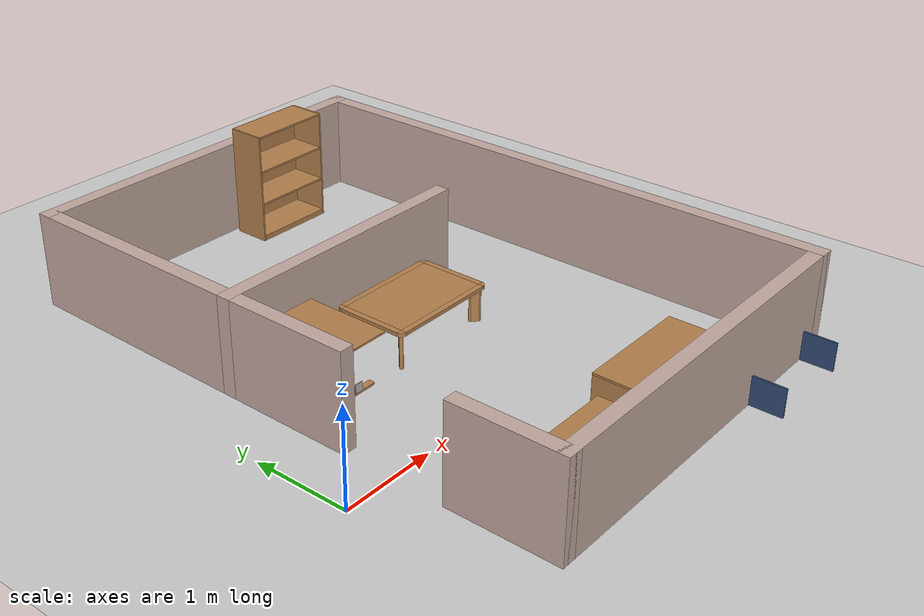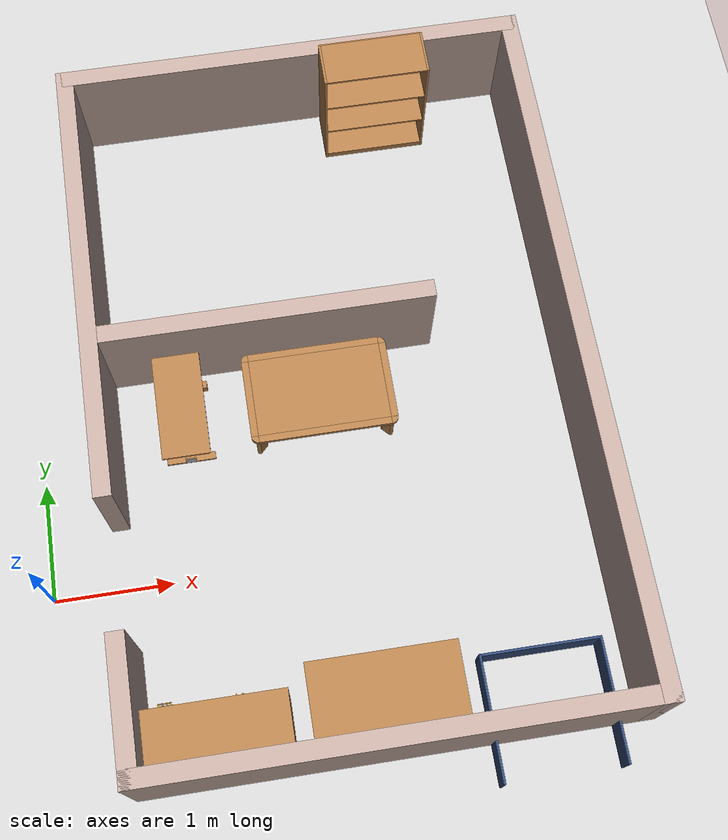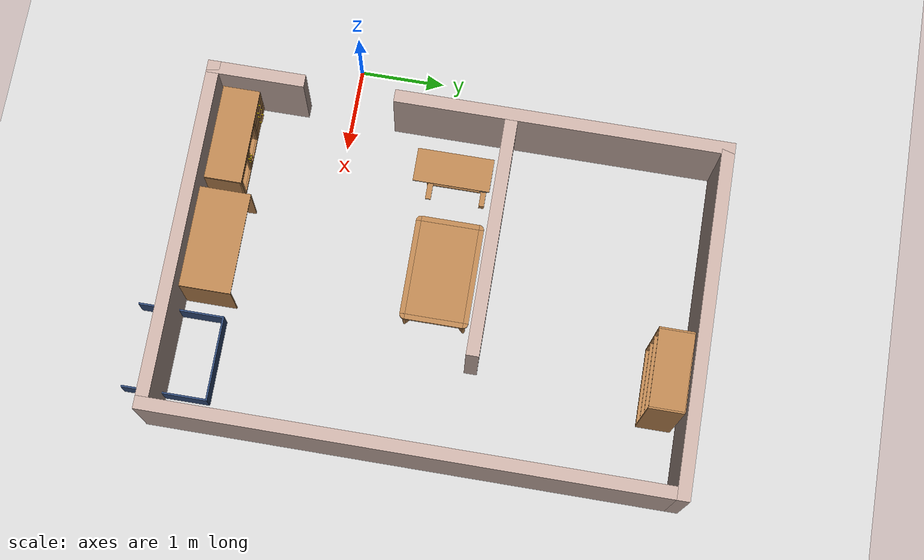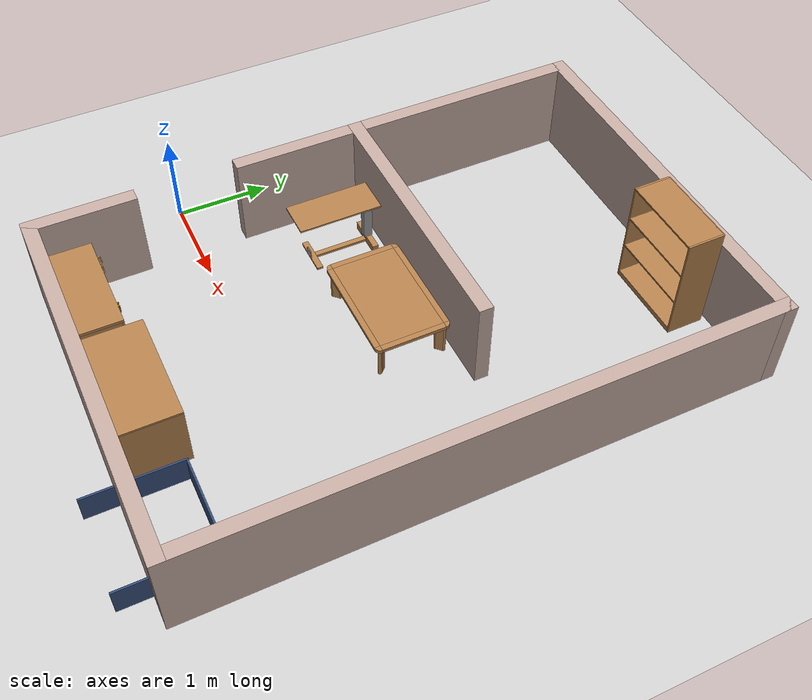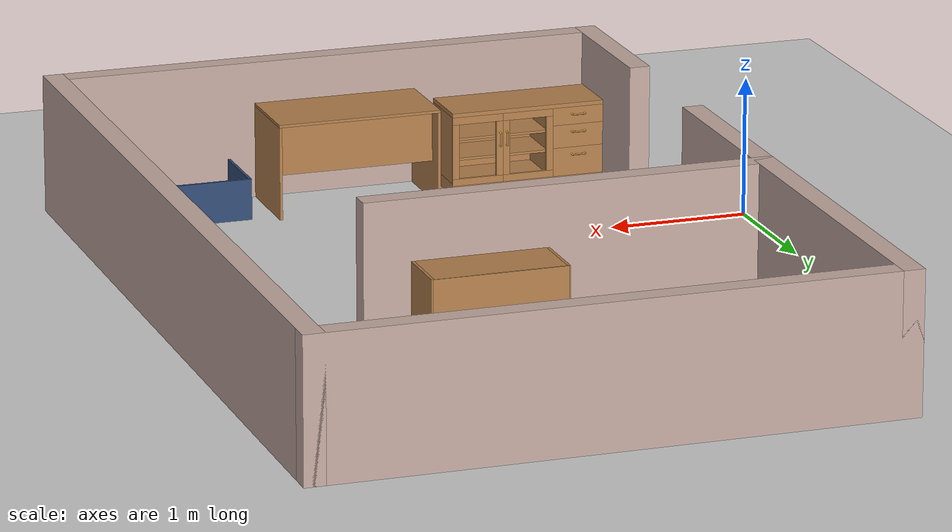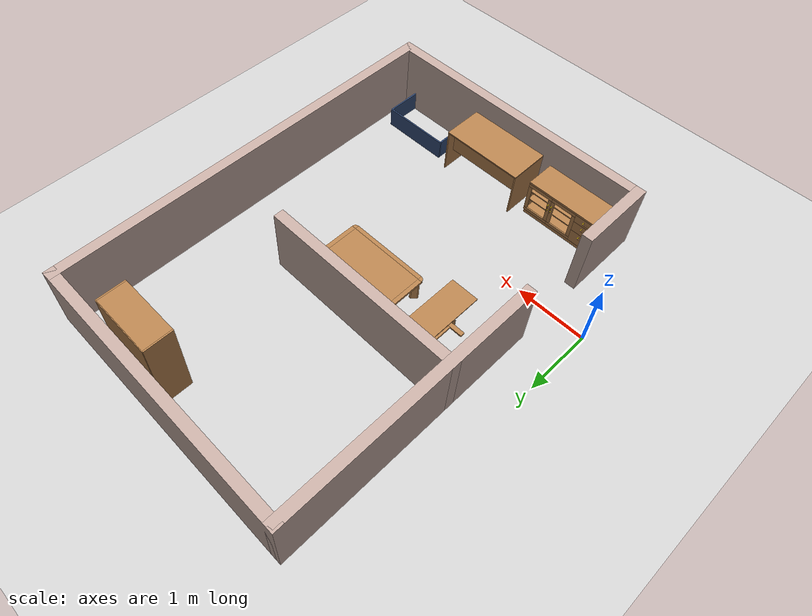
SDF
<sdf version="1.6">
 <world name="default">
  <light name="sun" type="directional">
   <pose>0 0 10 0 -0 0</pose>
   <diffuse>0.8 0.8 0.8 1</diffuse>
   <specular>0.2 0.2 0.2 1</specular>
   <attenuation>
    <range>1000</range>
    <constant>0.9</constant>
    <linear>0.01</linear>
    <quadratic>0.001</quadratic>
   </attenuation>
   <direction>-0.5 0.1 -0.9</direction>
  </light>
  <model name="ground_plane">
   <static>1</static>
   <link name="link">
    <collision name="collision">
     <geometry><plane><normal>0 0 1</normal><size>100 100</size></plane></geometry>
     <surface><friction><ode><mu>100</mu><mu2>50</mu2></ode></friction></surface>
    </collision>
    <visual name="visual">
     <cast_shadows>0</cast_shadows>
     <geometry><plane><normal>0 0 1</normal><size>100 100</size></plane></geometry>
     <material>
      <script><uri>file://media/materials/scripts/gazebo.material</uri><name>Gazebo/Grey</name></script>
     </material>
    </visual>
   </link>
  </model>
  <gravity>0 0 -9.8</gravity>
  <magnetic_field>6e-06 2.3e-05 -4.2e-05</magnetic_field>
  <atmosphere type="adiabatic"/>
  <physics name="default_physics" default="0" type="ode">
   <max_step_size>0.001</max_step_size>
   <real_time_factor>1</real_time_factor>
   <real_time_update_rate>1000</real_time_update_rate>
  </physics>
  <scene><ambient>0.4 0.4 0.4 1</ambient><background>0.7 0.7 0.7 1</background><shadows>1</shadows></scene>
  <spherical_coordinates>
   <surface_model>EARTH_WGS84</surface_model>
   <latitude_deg>0</latitude_deg>
   <longitude_deg>0</longitude_deg>
   <elevation>0</elevation>
   <heading_deg>0</heading_deg>
  </spherical_coordinates>
  <model name="robocup_example_walls">
   <pose>2.60042 1.39489 0 0 -0 0</pose>
   <link name="Wall_23">
    <collision name="Wall_23_Collision">
     <geometry><box><size>3.95 0.15 1</size></box></geometry>
     <pose>0 0 0.5 0 -0 0</pose>
    </collision>
    <visual name="Wall_23_Visual">
     <pose>0 0 0.5 0 -0 0</pose>
     <geometry><box><size>3.95 0.15 1</size></box></geometry>
     <material>
      <script><uri>file://media/materials/scripts/gazebo.material</uri><name>Gazebo/Grey</name></script>
      <ambient>0.760784 0.662745 0.627451 1</ambient>
     </material>
     <meta><layer>0</layer></meta>
    </visual>
    <pose>-2 1.1 0 0 -0 1.5708</pose>
   </link>
   <link name="Wall_24">
    <collision name="Wall_24_Collision">
     <geometry><box><size>4.15 0.15 1</size></box></geometry>
     <pose>0 0 0.5 0 -0 0</pose>
    </collision>
    <visual name="Wall_24_Visual">
     <pose>0 0 0.5 0 -0 0</pose>
     <geometry><box><size>4.15 0.15 1</size></box></geometry>
     <material>
      <script><uri>file://media/materials/scripts/gazebo.material</uri><name>Gazebo/Grey</name></script>
      <ambient>0.760784 0.662745 0.627451 1</ambient>
     </material>
     <meta><layer>0</layer></meta>
    </visual>
    <pose>-0 3 0 0 -0 0</pose>
   </link>
   <link name="Wall_26">
    <collision name="Wall_26_Collision">
     <geometry><box><size>1.15 0.15 1</size></box></geometry>
     <pose>0 0 0.5 0 -0 0</pose>
    </collision>
    <visual name="Wall_26_Visual">
     <pose>0 0 0.5 0 -0 0</pose>
     <geometry><box><size>1.15 0.15 1</size></box></geometry>
     <material>
      <script><uri>file://media/materials/scripts/gazebo.material</uri><name>Gazebo/Grey</name></script>
      <ambient>0.760784 0.662745 0.627451 1</ambient>
     </material>
     <meta><layer>0</layer></meta>
    </visual>
    <pose>-2 -2.5 0 0 -0 -1.5708</pose>
   </link>
   <link name="Wall_27">
    <collision name="Wall_27_Collision">
     <geometry><box><size>4.15 0.15 1</size></box></geometry>
     <pose>0 0 0.5 0 -0 0</pose>
    </collision>
    <visual name="Wall_27_Visual">
     <pose>0 0 0.5 0 -0 0</pose>
     <geometry><box><size>4.15 0.15 1</size></box></geometry>
     <material>
      <script><uri>file://media/materials/scripts/gazebo.material</uri><name>Gazebo/Grey</name></script>
      <ambient>0.760784 0.662745 0.627451 1</ambient>
     </material>
     <meta><layer>0</layer></meta>
    </visual>
    <pose>-0 -3 0 0 -0 0</pose>
   </link>
   <link name="Wall_28">
    <collision name="Wall_28_Collision">
     <geometry><box><size>6.15 0.15 1</size></box></geometry>
     <pose>0 0 0.5 0 -0 0</pose>
    </collision>
    <visual name="Wall_28_Visual">
     <pose>0 0 0.5 0 -0 0</pose>
     <geometry><box><size>6.15 0.15 1</size></box></geometry>
     <material>
      <script><uri>file://media/materials/scripts/gazebo.material</uri><name>Gazebo/Grey</name></script>
      <ambient>0.760784 0.662745 0.627451 1</ambient>
     </material>
     <meta><layer>0</layer></meta>
    </visual>
    <pose>2 0 0 0 -0 1.5708</pose>
   </link>
   <link name="Wall_32">
    <collision name="Wall_32_Collision">
     <geometry><box><size>2.95 0.15 1</size></box></geometry>
     <pose>0 0 0.5 0 -0 0</pose>
    </collision>
    <visual name="Wall_32_Visual">
     <pose>0 0 0.5 0 -0 0</pose>
     <geometry><box><size>2.95 0.15 1</size></box></geometry>
     <material>
      <script><uri>file://media/materials/scripts/gazebo.material</uri><name>Gazebo/Grey</name></script>
      <ambient>0.760784 0.662745 0.627451 1</ambient>
     </material>
     <meta><layer>0</layer></meta>
    </visual>
    <pose>-0.6 0.5 0 0 -0 0</pose>
   </link>
   <static>1</static>
  </model>
  <model name="kitchen_lowtable">
   <link name="link">
    <inertial>
     <mass>10</mass>
     <inertia><ixx>1</ixx><ixy>0</ixy><ixz>0</ixz><iyy>1</iyy><iyz>0</iyz><izz>1</izz></inertia>
    </inertial>
    <visual name="center_board">
     <pose>0 0 0.38 0 -0 0</pose>
     <geometry><box><size>0.68 1.13 0.04</size></box></geometry>
     <material>
      <script><uri>model://base_materials/wood/scripts/wood.material</uri><name>base_materials/wood</name></script>
     </material>
    </visual>
    <collision name="collision_center_board">
     <pose>0 0 0.38 0 -0 0</pose>
     <geometry><box><size>0.68 1.13 0.04</size></box></geometry>
    </collision>
    <visual name="front_board">
     <pose>0.37 0 0.38 0 -0 0</pose>
     <geometry><box><size>0.06 1.13 0.04</size></box></geometry>
     <material>
      <script><uri>model://base_materials/wood/scripts/wood.material</uri><name>base_materials/wood</name></script>
     </material>
    </visual>
    <collision name="collision_front_board">
     <pose>0.37 0 0.38 0 -0 0</pose>
     <geometry><box><size>0.06 1.13 0.04</size></box></geometry>
    </collision>
    <visual name="back_board">
     <pose>-0.37 0 0.38 0 -0 0</pose>
     <geometry><box><size>0.06 1.13 0.04</size></box></geometry>
     <material>
      <script><uri>model://base_materials/wood/scripts/wood.material</uri><name>base_materials/wood</name></script>
     </material>
    </visual>
    <collision name="collision_back_board">
     <pose>-0.37 0 0.38 0 -0 0</pose>
     <geometry><box><size>0.06 1.13 0.04</size></box></geometry>
    </collision>
    <visual name="right_board">
     <pose>0 0.595 0.38 0 -0 0</pose>
     <geometry><box><size>0.68 0.06 0.04</size></box></geometry>
     <material>
      <script><uri>model://base_materials/wood/scripts/wood.material</uri><name>base_materials/wood</name></script>
     </material>
    </visual>
    <collision name="collision_right_board">
     <pose>0 0.595 0.38 0 -0 0</pose>
     <geometry><box><size>0.68 0.06 0.04</size></box></geometry>
    </collision>
    <visual name="left_board">
     <pose>0 -0.595 0.38 0 -0 0</pose>
     <geometry><box><size>0.68 0.06 0.04</size></box></geometry>
     <material>
      <script><uri>model://base_materials/wood/scripts/wood.material</uri><name>base_materials/wood</name></script>
     </material>
    </visual>
    <collision name="collision_left_board">
     <pose>0 -0.595 0.38 0 -0 0</pose>
     <geometry><box><size>0.68 0.06 0.04</size></box></geometry>
    </collision>
    <visual name="front_right_corner_board">
     <pose>0.34 0.565 0.38 0 -0 0</pose>
     <geometry><cylinder><radius>0.06</radius><length>0.039</length></cylinder></geometry>
     <material>
      <script><uri>model://base_materials/wood/scripts/wood.material</uri><name>base_materials/wood</name></script>
     </material>
    </visual>
    <collision name="collision_front_right_corner_board">
     <pose>0.34 0.565 0.38 0 -0 0</pose>
     <geometry><cylinder><radius>0.06</radius><length>0.039</length></cylinder></geometry>
    </collision>
    <visual name="front_left_corner_board">
     <pose>0.34 -0.565 0.38 0 -0 0</pose>
     <geometry><cylinder><radius>0.06</radius><length>0.039</length></cylinder></geometry>
     <material>
      <script><uri>model://base_materials/wood/scripts/wood.material</uri><name>base_materials/wood</name></script>
     </material>
    </visual>
    <collision name="collision_front_left_corner_board">
     <pose>0.34 -0.565 0.38 0 -0 0</pose>
     <geometry><cylinder><radius>0.06</radius><length>0.039</length></cylinder></geometry>
    </collision>
    <visual name="front_back_right_corner_board">
     <pose>-0.34 0.565 0.38 0 -0 0</pose>
     <geometry><cylinder><radius>0.06</radius><length>0.039</length></cylinder></geometry>
     <material>
      <script><uri>model://base_materials/wood/scripts/wood.material</uri><name>base_materials/wood</name></script>
     </material>
    </visual>
    <collision name="collision_back_right_corner_board">
     <pose>-0.34 0.565 0.38 0 -0 0</pose>
     <geometry><cylinder><radius>0.06</radius><length>0.039</length></cylinder></geometry>
    </collision>
    <visual name="front_back_left_corner_board">
     <pose>-0.34 -0.565 0.38 0 -0 0</pose>
     <geometry><cylinder><radius>0.06</radius><length>0.039</length></cylinder></geometry>
     <material>
      <script><uri>model://base_materials/wood/scripts/wood.material</uri><name>base_materials/wood</name></script>
     </material>
    </visual>
    <collision name="collision_back_left_corner_board">
     <pose>-0.34 -0.565 0.38 0 -0 0</pose>
     <geometry><cylinder><radius>0.06</radius><length>0.039</length></cylinder></geometry>
    </collision>
    <visual name="front_left_corner_frame1">
     <pose>0.345858 -0.57086 0.18 0 -0 0</pose>
     <geometry><cylinder><radius>0.02</radius><length>0.36</length></cylinder></geometry>
     <material>
      <script><uri>model://base_materials/wood/scripts/wood.material</uri><name>base_materials/wood</name></script>
     </material>
    </visual>
    <collision name="collision_front_left_corner_frame1">
     <pose>0.345858 -0.57086 0.18 0 -0 0</pose>
     <geometry><cylinder><radius>0.02</radius><length>0.36</length></cylinder></geometry>
    </collision>
    <visual name="front_left_corner_frame2">
     <pose>0.317574 -0.54257 0.18 0 -0 0.7854</pose>
     <geometry><box><size>0.04 0.08 0.36</size></box></geometry>
     <material>
      <script><uri>model://base_materials/wood/scripts/wood.material</uri><name>base_materials/wood</name></script>
     </material>
    </visual>
    <collision name="collision_front_left_corner_frame2">
     <pose>0.317574 -0.54257 0.18 0 -0 0.7854</pose>
     <geometry><box><size>0.04 0.08 0.36</size></box></geometry>
    </collision>
    <visual name="front_left_corner_frame3">
     <pose>0.289289 -0.51429 0.18 0 -0 0</pose>
     <geometry><cylinder><radius>0.02</radius><length>0.36</length></cylinder></geometry>
     <material>
      <script><uri>model://base_materials/wood/scripts/wood.material</uri><name>base_materials/wood</name></script>
     </material>
    </visual>
    <collision name="collision_front_left_corner_frame3">
     <pose>0.289289 -0.51429 0.18 0 -0 0</pose>
     <geometry><cylinder><radius>0.02</radius><length>0.36</length></cylinder></geometry>
    </collision>
    <visual name="front_right_corner_frame1">
     <pose>0.345858 0.57086 0.18 0 -0 0</pose>
     <geometry><cylinder><radius>0.02</radius><length>0.36</length></cylinder></geometry>
     <material>
      <script><uri>model://base_materials/wood/scripts/wood.material</uri><name>base_materials/wood</name></script>
     </material>
    </visual>
    <collision name="collision_front_right_corner_frame1">
     <pose>0.345858 0.57086 0.18 0 -0 0</pose>
     <geometry><cylinder><radius>0.02</radius><length>0.36</length></cylinder></geometry>
    </collision>
    <visual name="front_right_corner_frame2">
     <pose>0.317574 0.54257 0.18 0 0 -0.7854</pose>
     <geometry><box><size>0.04 0.08 0.36</size></box></geometry>
     <material>
      <script><uri>model://base_materials/wood/scripts/wood.material</uri><name>base_materials/wood</name></script>
     </material>
    </visual>
    <collision name="collision_front_right_corner_frame2">
     <pose>0.317574 0.54257 0.18 0 0 -0.7854</pose>
     <geometry><box><size>0.04 0.08 0.36</size></box></geometry>
    </collision>
    <visual name="front_right_corner_frame3">
     <pose>0.289289 0.51429 0.18 0 -0 0</pose>
     <geometry><cylinder><radius>0.02</radius><length>0.36</length></cylinder></geometry>
     <material>
      <script><uri>model://base_materials/wood/scripts/wood.material</uri><name>base_materials/wood</name></script>
     </material>
    </visual>
    <collision name="collision_front_right_corner_frame3">
     <pose>0.289289 0.51429 0.18 0 -0 0</pose>
     <geometry><cylinder><radius>0.02</radius><length>0.36</length></cylinder></geometry>
    </collision>
    <visual name="back_left_corner_frame1">
     <pose>-0.345858 -0.57086 0.18 0 -0 0</pose>
     <geometry><cylinder><radius>0.02</radius><length>0.36</length></cylinder></geometry>
     <material>
      <script><uri>model://base_materials/wood/scripts/wood.material</uri><name>base_materials/wood</name></script>
     </material>
    </visual>
    <collision name="collision_back_left_corner_frame1">
     <pose>-0.345858 -0.57086 0.18 0 -0 0</pose>
     <geometry><cylinder><radius>0.02</radius><length>0.36</length></cylinder></geometry>
    </collision>
    <visual name="back_left_corner_frame2">
     <pose>-0.317574 -0.54257 0.18 0 0 -0.7854</pose>
     <geometry><box><size>0.04 0.08 0.36</size></box></geometry>
     <material>
      <script><uri>model://base_materials/wood/scripts/wood.material</uri><name>base_materials/wood</name></script>
     </material>
    </visual>
    <collision name="collision_back_left_corner_frame2">
     <pose>-0.317574 -0.54257 0.18 0 0 -0.7854</pose>
     <geometry><box><size>0.04 0.08 0.36</size></box></geometry>
    </collision>
    <visual name="back_left_corner_frame3">
     <pose>-0.289289 -0.51429 0.18 0 -0 0</pose>
     <geometry><cylinder><radius>0.02</radius><length>0.36</length></cylinder></geometry>
     <material>
      <script><uri>model://base_materials/wood/scripts/wood.material</uri><name>base_materials/wood</name></script>
     </material>
    </visual>
    <collision name="collision_back_left_corner_frame3">
     <pose>-0.289289 -0.51429 0.18 0 -0 0</pose>
     <geometry><cylinder><radius>0.02</radius><length>0.36</length></cylinder></geometry>
    </collision>
    <visual name="back_right_corner_frame1">
     <pose>-0.345858 0.57086 0.18 0 -0 0</pose>
     <geometry><cylinder><radius>0.02</radius><length>0.36</length></cylinder></geometry>
     <material>
      <script><uri>model://base_materials/wood/scripts/wood.material</uri><name>base_materials/wood</name></script>
     </material>
    </visual>
    <collision name="collision_back_right_corner_frame1">
     <pose>-0.345858 0.57086 0.18 0 -0 0</pose>
     <geometry><cylinder><radius>0.02</radius><length>0.36</length></cylinder></geometry>
    </collision>
    <visual name="back_right_corner_frame2">
     <pose>-0.317574 0.54257 0.18 0 -0 0.7854</pose>
     <geometry><box><size>0.04 0.08 0.36</size></box></geometry>
     <material>
      <script><uri>model://base_materials/wood/scripts/wood.material</uri><name>base_materials/wood</name></script>
     </material>
    </visual>
    <collision name="collision_back_right_corner_frame2">
     <pose>-0.317574 0.54257 0.18 0 -0 0.7854</pose>
     <geometry><box><size>0.04 0.08 0.36</size></box></geometry>
    </collision>
    <visual name="back_right_corner_frame3">
     <pose>-0.289289 0.51429 0.18 0 -0 0</pose>
     <geometry><cylinder><radius>0.02</radius><length>0.36</length></cylinder></geometry>
     <material>
      <script><uri>model://base_materials/wood/scripts/wood.material</uri><name>base_materials/wood</name></script>
     </material>
    </visual>
    <collision name="collision_back_right_corner_frame3">
     <pose>-0.289289 0.51429 0.18 0 -0 0</pose>
     <geometry><cylinder><radius>0.02</radius><length>0.36</length></cylinder></geometry>
    </collision>
    <velocity_decay><linear>0</linear><angular>0</angular></velocity_decay>
   </link>
   <static>1</static>
   <pose>2.42066 1.38427 0 0 0 -1.57</pose>
  </model>
  <model name="living_sideboard">
   <link name="link">
    <inertial>
     <mass>10</mass>
     <inertia><ixx>1</ixx><ixy>0</ixy><ixz>0</ixz><iyy>1</iyy><iyz>0</iyz><izz>1</izz></inertia>
    </inertial>
    <visual name="left_board">
     <pose>-0.23 0.01 0.3375 0 -0 0</pose>
     <geometry><box><size>0.42 0.02 0.495</size></box></geometry>
     <material>
      <script><uri>model://base_materials/wood/scripts/wood.material</uri><name>base_materials/wood</name></script>
     </material>
    </visual>
    <collision name="collision_left_board">
     <pose>-0.23 0.01 0.3375 0 -0 0</pose>
     <geometry><box><size>0.42 0.02 0.495</size></box></geometry>
    </collision>
    <visual name="back_board">
     <pose>-0.42 0.575 0.2925 0 -0 0</pose>
     <geometry><box><size>0.02 1.11 0.585</size></box></geometry>
     <material>
      <script><uri>model://base_materials/wood/scripts/wood.material</uri><name>base_materials/wood</name></script>
     </material>
    </visual>
    <collision name="collision_back_board">
     <pose>-0.42 0.575 0.2925 0 -0 0</pose>
     <geometry><box><size>0.02 1.11 0.585</size></box></geometry>
    </collision>
    <visual name="right_board">
     <pose>-0.23 1.14 0.3375 0 -0 0</pose>
     <geometry><box><size>0.42 0.02 0.495</size></box></geometry>
     <material>
      <script><uri>model://base_materials/wood/scripts/wood.material</uri><name>base_materials/wood</name></script>
     </material>
    </visual>
    <collision name="collision_right_board">
     <pose>-0.23 1.14 0.3375 0 -0 0</pose>
     <geometry><box><size>0.42 0.02 0.495</size></box></geometry>
    </collision>
    <visual name="center_vertical_board1">
     <pose>-0.23 0.74 0.3375 0 -0 0</pose>
     <geometry><box><size>0.42 0.02 0.495</size></box></geometry>
     <material>
      <script><uri>model://base_materials/wood/scripts/wood.material</uri><name>base_materials/wood</name></script>
     </material>
    </visual>
    <collision name="collision_center_vertical_board1">
     <pose>-0.23 0.74 0.3375 0 -0 0</pose>
     <geometry><box><size>0.42 0.02 0.495</size></box></geometry>
    </collision>
    <visual name="top_board">
     <pose>-0.22 0.575 0.6 0 -0 0</pose>
     <geometry><box><size>0.44 1.15 0.03</size></box></geometry>
     <material>
      <script><uri>model://base_materials/wood/scripts/wood.material</uri><name>base_materials/wood</name></script>
     </material>
    </visual>
    <collision name="collision_top_board">
     <pose>-0.22 0.575 0.6 0 -0 0</pose>
     <geometry><box><size>0.44 1.15 0.03</size></box></geometry>
    </collision>
    <visual name="bottom_board">
     <pose>-0.23 0.575 0.045 0 -0 0</pose>
     <geometry><box><size>0.42 1.15 0.09</size></box></geometry>
     <material>
      <script><uri>model://base_materials/wood/scripts/wood.material</uri><name>base_materials/wood</name></script>
     </material>
    </visual>
    <collision name="collision_bottom_board">
     <pose>-0.23 0.575 0.045 0 -0 0</pose>
     <geometry><box><size>0.42 1.15 0.09</size></box></geometry>
    </collision>
    <visual name="1st_shelf">
     <pose>-0.225 0.37 0.259 0 -0 0</pose>
     <geometry><box><size>0.36 0.72 0.018</size></box></geometry>
     <material>
      <script><uri>model://base_materials/wood/scripts/wood.material</uri><name>base_materials/wood</name></script>
     </material>
    </visual>
    <collision name="collision_1st_shelf">
     <pose>-0.225 0.37 0.259 0 -0 0</pose>
     <geometry><box><size>0.36 0.72 0.018</size></box></geometry>
    </collision>
    <visual name="2nd_shelf">
     <pose>-0.225 0.37 0.407 0 -0 0</pose>
     <geometry><box><size>0.36 0.72 0.018</size></box></geometry>
     <material>
      <script><uri>model://base_materials/wood/scripts/wood.material</uri><name>base_materials/wood</name></script>
     </material>
    </visual>
    <collision name="collision_2nd_shelf">
     <pose>-0.225 0.37 0.407 0 -0 0</pose>
     <geometry><box><size>0.36 0.72 0.018</size></box></geometry>
    </collision>
    <visual name="1st_drawer">
     <pose>-0.2025 0.95 0.52 0 -0 0</pose>
     <geometry><box><size>0.405 0.38 0.13</size></box></geometry>
     <material>
      <script><uri>model://base_materials/wood/scripts/wood.material</uri><name>base_materials/wood</name></script>
     </material>
    </visual>
    <collision name="collision_1st_drawer">
     <pose>-0.2025 0.95 0.52 0 -0 0</pose>
     <geometry><box><size>0.405 0.38 0.13</size></box></geometry>
    </collision>
    <visual name="1st_drawer_handle_l1">
     <pose>0.015 0.9015 0.535 3.14159 1.57079 3.14159</pose>
     <geometry><cylinder><radius>0.006</radius><length>0.03</length></cylinder></geometry>
     <material>
      <ambient>1 0.84314 0 1</ambient>
      <diffuse>1 0.84314 0 1</diffuse>
      <specular>0.1 0.1 0.1 1</specular>
     </material>
    </visual>
    <collision name="collision_1st_drawer_handle_l1">
     <pose>0.015 0.9015 0.535 3.14159 1.57079 3.14159</pose>
     <geometry><cylinder><radius>0.006</radius><length>0.03</length></cylinder></geometry>
    </collision>
    <visual name="1st_drawer_handle_l2">
     <pose>0.03 0.9015 0.535 0 -0 0</pose>
     <geometry><sphere><radius>0.006</radius></sphere></geometry>
     <material>
      <ambient>1 0.84314 0 1</ambient>
      <diffuse>1 0.84314 0 1</diffuse>
      <specular>0.1 0.1 0.1 1</specular>
     </material>
    </visual>
    <collision name="collision_1st_drawer_handle_l2">
     <pose>0.03 0.9015 0.535 0 -0 0</pose>
     <geometry><sphere><radius>0.006</radius></sphere></geometry>
    </collision>
    <visual name="1st_drawer_handle_r1">
     <pose>0.015 0.9985 0.535 3.14159 1.57079 3.14159</pose>
     <geometry><cylinder><radius>0.006</radius><length>0.03</length></cylinder></geometry>
     <material>
      <ambient>1 0.84314 0 1</ambient>
      <diffuse>1 0.84314 0 1</diffuse>
      <specular>0.1 0.1 0.1 1</specular>
     </material>
    </visual>
    <collision name="collision_1st_drawer_handle_r1">
     <pose>0.015 0.9985 0.535 3.14159 1.57079 3.14159</pose>
     <geometry><cylinder><radius>0.006</radius><length>0.03</length></cylinder></geometry>
    </collision>
    <visual name="1st_drawer_handle_r2">
     <pose>0.03 0.9985 0.535 0 -0 0</pose>
     <geometry><sphere><radius>0.006</radius></sphere></geometry>
     <material>
      <ambient>1 0.84314 0 1</ambient>
      <diffuse>1 0.84314 0 1</diffuse>
      <specular>0.1 0.1 0.1 1</specular>
     </material>
    </visual>
    <collision name="collision_1st_drawer_handle_r2">
     <pose>0.03 0.9985 0.535 0 -0 0</pose>
     <geometry><sphere><radius>0.006</radius></sphere></geometry>
    </collision>
    <visual name="1st_drawer_handle_center">
     <pose>0.03 0.95 0.535 1.5708 -0 0</pose>
     <geometry><cylinder><radius>0.006</radius><length>0.097</length></cylinder></geometry>
     <material>
      <script><uri>model://base_materials/wood/scripts/wood.material</uri><name>base_materials/wood</name></script>
     </material>
    </visual>
    <collision name="collision_1st_drawer_handle_center">
     <pose>0.03 0.95 0.535 1.5708 -0 0</pose>
     <geometry><cylinder><radius>0.006</radius><length>0.097</length></cylinder></geometry>
    </collision>
    <visual name="2nd_drawer">
     <pose>-0.2025 0.95 0.37 0 -0 0</pose>
     <geometry><box><size>0.405 0.38 0.17</size></box></geometry>
     <material>
      <script><uri>model://base_materials/wood/scripts/wood.material</uri><name>base_materials/wood</name></script>
     </material>
    </visual>
    <collision name="collision_2nd_drawer">
     <pose>-0.2025 0.95 0.37 0 -0 0</pose>
     <geometry><box><size>0.405 0.38 0.17</size></box></geometry>
    </collision>
    <visual name="2nd_drawer_handle_l1">
     <pose>0.015 0.9015 0.405 3.14159 1.57079 3.14159</pose>
     <geometry><cylinder><radius>0.006</radius><length>0.03</length></cylinder></geometry>
     <material>
      <ambient>1 0.84314 0 1</ambient>
      <diffuse>1 0.84314 0 1</diffuse>
      <specular>0.1 0.1 0.1 1</specular>
     </material>
    </visual>
    <collision name="collision_2nd_drawer_handle_l1">
     <pose>0.015 0.9015 0.405 3.14159 1.57079 3.14159</pose>
     <geometry><cylinder><radius>0.006</radius><length>0.03</length></cylinder></geometry>
    </collision>
    <visual name="2nd_drawer_handle_l2">
     <pose>0.03 0.9015 0.405 0 -0 0</pose>
     <geometry><sphere><radius>0.006</radius></sphere></geometry>
     <material>
      <ambient>1 0.84314 0 1</ambient>
      <diffuse>1 0.84314 0 1</diffuse>
      <specular>0.1 0.1 0.1 1</specular>
     </material>
    </visual>
    <collision name="collision_2nd_drawer_handle_l2">
     <pose>0.03 0.9015 0.405 0 -0 0</pose>
     <geometry><sphere><radius>0.006</radius></sphere></geometry>
    </collision>
    <visual name="2nd_drawer_handle_r1">
     <pose>0.015 0.9985 0.405 3.14159 1.57079 3.14159</pose>
     <geometry><cylinder><radius>0.006</radius><length>0.03</length></cylinder></geometry>
     <material>
      <ambient>1 0.84314 0 1</ambient>
      <diffuse>1 0.84314 0 1</diffuse>
      <specular>0.1 0.1 0.1 1</specular>
     </material>
    </visual>
    <collision name="collision_2nd_drawer_handle_r1">
     <pose>0.015 0.9985 0.405 3.14159 1.57079 3.14159</pose>
     <geometry><cylinder><radius>0.006</radius><length>0.03</length></cylinder></geometry>
    </collision>
    <visual name="2nd_drawer_handle_r2">
     <pose>0.03 0.9985 0.405 0 -0 0</pose>
     <geometry><sphere><radius>0.006</radius></sphere></geometry>
     <material>
      <ambient>1 0.84314 0 1</ambient>
      <diffuse>1 0.84314 0 1</diffuse>
      <specular>0.1 0.1 0.1 1</specular>
     </material>
    </visual>
    <collision name="collision_2nd_drawer_handle_r2">
     <pose>0.03 0.9985 0.405 0 -0 0</pose>
     <geometry><sphere><radius>0.006</radius></sphere></geometry>
    </collision>
    <visual name="2nd_drawer_handle_center">
     <pose>0.03 0.95 0.405 1.5708 -0 0</pose>
     <geometry><cylinder><radius>0.006</radius><length>0.097</length></cylinder></geometry>
     <material>
      <script><uri>model://base_materials/wood/scripts/wood.material</uri><name>base_materials/wood</name></script>
     </material>
    </visual>
    <collision name="collision_2nd_drawer_handle_center">
     <pose>0.03 0.95 0.405 1.5708 -0 0</pose>
     <geometry><cylinder><radius>0.006</radius><length>0.097</length></cylinder></geometry>
    </collision>
    <visual name="3rd_drawer">
     <pose>-0.2025 0.95 0.18 0 -0 0</pose>
     <geometry><box><size>0.405 0.38 0.21</size></box></geometry>
     <material>
      <script><uri>model://base_materials/wood/scripts/wood.material</uri><name>base_materials/wood</name></script>
     </material>
    </visual>
    <collision name="collision_3rd_drawer">
     <pose>-0.2025 0.95 0.18 0 -0 0</pose>
     <geometry><box><size>0.405 0.38 0.21</size></box></geometry>
    </collision>
    <visual name="3rd_drawer_handle_l1">
     <pose>0.015 0.9015 0.235 3.14159 1.57079 3.14159</pose>
     <geometry><cylinder><radius>0.006</radius><length>0.03</length></cylinder></geometry>
     <material>
      <ambient>1 0.84314 0 1</ambient>
      <diffuse>1 0.84314 0 1</diffuse>
      <specular>0.1 0.1 0.1 1</specular>
     </material>
    </visual>
    <collision name="collision_3rd_drawer_handle_l1">
     <pose>0.015 0.9015 0.235 3.14159 1.57079 3.14159</pose>
     <geometry><cylinder><radius>0.006</radius><length>0.03</length></cylinder></geometry>
    </collision>
    <visual name="3rd_drawer_handle_l2">
     <pose>0.03 0.9015 0.235 0 -0 0</pose>
     <geometry><sphere><radius>0.006</radius></sphere></geometry>
     <material>
      <ambient>1 0.84314 0 1</ambient>
      <diffuse>1 0.84314 0 1</diffuse>
      <specular>0.1 0.1 0.1 1</specular>
     </material>
    </visual>
    <collision name="collision_3rd_drawer_handle_l2">
     <pose>0.03 0.9015 0.235 0 -0 0</pose>
     <geometry><sphere><radius>0.006</radius></sphere></geometry>
    </collision>
    <visual name="3rd_drawer_handle_r1">
     <pose>0.015 0.9985 0.235 3.14159 1.57079 3.14159</pose>
     <geometry><cylinder><radius>0.006</radius><length>0.03</length></cylinder></geometry>
     <material>
      <ambient>1 0.84314 0 1</ambient>
      <diffuse>1 0.84314 0 1</diffuse>
      <specular>0.1 0.1 0.1 1</specular>
     </material>
    </visual>
    <collision name="collision_3rd_drawer_handle_r1">
     <pose>0.015 0.9985 0.235 3.14159 1.57079 3.14159</pose>
     <geometry><cylinder><radius>0.006</radius><length>0.03</length></cylinder></geometry>
    </collision>
    <visual name="3rd_drawer_handle_r2">
     <pose>0.03 0.9985 0.235 0 -0 0</pose>
     <geometry><sphere><radius>0.006</radius></sphere></geometry>
     <material>
      <ambient>1 0.84314 0 1</ambient>
      <diffuse>1 0.84314 0 1</diffuse>
      <specular>0.1 0.1 0.1 1</specular>
     </material>
    </visual>
    <collision name="collision_3rd_drawer_handle_r2">
     <pose>0.03 0.9985 0.235 0 -0 0</pose>
     <geometry><sphere><radius>0.006</radius></sphere></geometry>
    </collision>
    <visual name="3rd_drawer_handle_center">
     <pose>0.03 0.95 0.235 1.5708 -0 0</pose>
     <geometry><cylinder><radius>0.006</radius><length>0.097</length></cylinder></geometry>
     <material>
      <script><uri>model://base_materials/wood/scripts/wood.material</uri><name>base_materials/wood</name></script>
     </material>
    </visual>
    <collision name="collision_3rd_drawer_handle_center">
     <pose>0.03 0.95 0.235 1.5708 -0 0</pose>
     <geometry><cylinder><radius>0.006</radius><length>0.097</length></cylinder></geometry>
    </collision>
    <visual name="left_door_left_frame">
     <pose>-0.01 0.025 0.3275 0 -0 0</pose>
     <geometry><box><size>0.02 0.05 0.405</size></box></geometry>
     <material>
      <script><uri>model://base_materials/wood/scripts/wood.material</uri><name>base_materials/wood</name></script>
     </material>
    </visual>
    <collision name="collision_left_door_left_frame">
     <pose>-0.01 0.025 0.3275 0 -0 0</pose>
     <geometry><box><size>0.02 0.05 0.405</size></box></geometry>
    </collision>
    <visual name="left_door_right_frame">
     <pose>-0.01 0.355 0.3275 0 -0 0</pose>
     <geometry><box><size>0.02 0.05 0.405</size></box></geometry>
     <material>
      <script><uri>model://base_materials/wood/scripts/wood.material</uri><name>base_materials/wood</name></script>
     </material>
    </visual>
    <collision name="collision_left_door_right_frame">
     <pose>-0.01 0.355 0.3275 0 -0 0</pose>
     <geometry><box><size>0.02 0.05 0.405</size></box></geometry>
    </collision>
    <visual name="left_door_handle_top1">
     <pose>0.015 0.355 0.4475 3.14159 1.57079 3.14159</pose>
     <geometry><cylinder><radius>0.006</radius><length>0.03</length></cylinder></geometry>
     <material>
      <ambient>1 0.84314 0 1</ambient>
      <diffuse>1 0.84314 0 1</diffuse>
      <specular>0.1 0.1 0.1 1</specular>
     </material>
    </visual>
    <collision name="collision_left_door_handle_top1">
     <pose>0.015 0.355 0.4475 3.14159 1.57079 3.14159</pose>
     <geometry><cylinder><radius>0.006</radius><length>0.03</length></cylinder></geometry>
    </collision>
    <visual name="left_door_handle_top2">
     <pose>0.03 0.355 0.4475 0 -0 0</pose>
     <geometry><sphere><radius>0.006</radius></sphere></geometry>
     <material>
      <ambient>1 0.84314 0 1</ambient>
      <diffuse>1 0.84314 0 1</diffuse>
      <specular>0.1 0.1 0.1 1</specular>
     </material>
    </visual>
    <collision name="collision_left_door_handle_top2">
     <pose>0.03 0.355 0.4475 0 -0 0</pose>
     <geometry><sphere><radius>0.006</radius></sphere></geometry>
    </collision>
    <visual name="left_door_handle_bottom1">
     <pose>0.015 0.355 0.3505 3.14159 1.57079 3.14159</pose>
     <geometry><cylinder><radius>0.006</radius><length>0.03</length></cylinder></geometry>
     <material>
      <ambient>1 0.84314 0 1</ambient>
      <diffuse>1 0.84314 0 1</diffuse>
      <specular>0.1 0.1 0.1 1</specular>
     </material>
    </visual>
    <collision name="collision_left_door_handle_bottom1">
     <pose>0.015 0.355 0.3505 3.14159 1.57079 3.14159</pose>
     <geometry><cylinder><radius>0.006</radius><length>0.03</length></cylinder></geometry>
    </collision>
    <visual name="left_door_handle_bottom2">
     <pose>0.03 0.355 0.3505 0 -0 0</pose>
     <geometry><sphere><radius>0.006</radius></sphere></geometry>
     <material>
      <ambient>1 0.84314 0 1</ambient>
      <diffuse>1 0.84314 0 1</diffuse>
      <specular>0.1 0.1 0.1 1</specular>
     </material>
    </visual>
    <collision name="collision_left_door_handle_bottom2">
     <pose>0.03 0.355 0.3505 0 -0 0</pose>
     <geometry><sphere><radius>0.006</radius></sphere></geometry>
    </collision>
    <visual name="left_door_handle_center">
     <pose>0.03 0.355 0.399 0 -0 0</pose>
     <geometry><cylinder><radius>0.006</radius><length>0.097</length></cylinder></geometry>
     <material>
      <script><uri>model://base_materials/wood/scripts/wood.material</uri><name>base_materials/wood</name></script>
     </material>
    </visual>
    <collision name="collision_left_door_handle_center">
     <pose>0.03 0.355 0.399 0 -0 0</pose>
     <geometry><cylinder><radius>0.006</radius><length>0.097</length></cylinder></geometry>
    </collision>
    <visual name="left_door_top_frame">
     <pose>-0.01 0.19 0.5575 0 -0 0</pose>
     <geometry><box><size>0.02 0.38 0.055</size></box></geometry>
     <material>
      <script><uri>model://base_materials/wood/scripts/wood.material</uri><name>base_materials/wood</name></script>
     </material>
    </visual>
    <collision name="collision_left_door_top_frame">
     <pose>-0.01 0.19 0.5575 0 -0 0</pose>
     <geometry><box><size>0.02 0.38 0.055</size></box></geometry>
    </collision>
    <visual name="left_door_bottom_frame">
     <pose>-0.01 0.19 0.1 0 -0 0</pose>
     <geometry><box><size>0.02 0.38 0.05</size></box></geometry>
     <material>
      <script><uri>model://base_materials/wood/scripts/wood.material</uri><name>base_materials/wood</name></script>
     </material>
    </visual>
    <collision name="collision_left_door_bottom_frame">
     <pose>-0.01 0.19 0.1 0 -0 0</pose>
     <geometry><box><size>0.02 0.38 0.05</size></box></geometry>
    </collision>
    <visual name="right_door_left_frame">
     <pose>-0.01 0.405 0.3275 0 -0 0</pose>
     <geometry><box><size>0.02 0.05 0.405</size></box></geometry>
     <material>
      <script><uri>model://base_materials/wood/scripts/wood.material</uri><name>base_materials/wood</name></script>
     </material>
    </visual>
    <collision name="collision_right_door_left_frame">
     <pose>-0.01 0.405 0.3275 0 -0 0</pose>
     <geometry><box><size>0.02 0.05 0.405</size></box></geometry>
    </collision>
    <visual name="right_door_right_frame">
     <pose>-0.01 0.735 0.3275 0 -0 0</pose>
     <geometry><box><size>0.02 0.05 0.405</size></box></geometry>
     <material>
      <script><uri>model://base_materials/wood/scripts/wood.material</uri><name>base_materials/wood</name></script>
     </material>
    </visual>
    <collision name="collision_right_door_right_frame">
     <pose>-0.01 0.735 0.3275 0 -0 0</pose>
     <geometry><box><size>0.02 0.05 0.405</size></box></geometry>
    </collision>
    <visual name="right_door_top_frame">
     <pose>-0.01 0.57 0.5575 0 -0 0</pose>
     <geometry><box><size>0.02 0.38 0.055</size></box></geometry>
     <material>
      <script><uri>model://base_materials/wood/scripts/wood.material</uri><name>base_materials/wood</name></script>
     </material>
    </visual>
    <collision name="collision_right_door_top_frame">
     <pose>-0.01 0.57 0.5575 0 -0 0</pose>
     <geometry><box><size>0.02 0.38 0.055</size></box></geometry>
    </collision>
    <visual name="right_door_bottom_frame">
     <pose>-0.01 0.57 0.1 0 -0 0</pose>
     <geometry><box><size>0.02 0.38 0.05</size></box></geometry>
     <material>
      <script><uri>model://base_materials/wood/scripts/wood.material</uri><name>base_materials/wood</name></script>
     </material>
    </visual>
    <collision name="collision_right_door_bottom_frame">
     <pose>-0.01 0.57 0.1 0 -0 0</pose>
     <geometry><box><size>0.02 0.38 0.05</size></box></geometry>
    </collision>
    <visual name="right_door_handle_top1">
     <pose>0.015 0.405 0.4475 3.14159 1.57079 3.14159</pose>
     <geometry><cylinder><radius>0.006</radius><length>0.03</length></cylinder></geometry>
     <material>
      <ambient>1 0.84314 0 1</ambient>
      <diffuse>1 0.84314 0 1</diffuse>
      <specular>0.1 0.1 0.1 1</specular>
     </material>
    </visual>
    <collision name="collision_right_door_handle_top1">
     <pose>0.015 0.405 0.4475 3.14159 1.57079 3.14159</pose>
     <geometry><cylinder><radius>0.006</radius><length>0.03</length></cylinder></geometry>
    </collision>
    <visual name="right_door_handle_top2">
     <pose>0.03 0.405 0.4475 0 -0 0</pose>
     <geometry><sphere><radius>0.006</radius></sphere></geometry>
     <material>
      <ambient>1 0.84314 0 1</ambient>
      <diffuse>1 0.84314 0 1</diffuse>
      <specular>0.1 0.1 0.1 1</specular>
     </material>
    </visual>
    <collision name="collision_right_door_handle_top2">
     <pose>0.03 0.405 0.4475 0 -0 0</pose>
     <geometry><sphere><radius>0.006</radius></sphere></geometry>
    </collision>
    <visual name="right_door_handle_bottom1">
     <pose>0.015 0.405 0.3505 3.14159 1.57079 3.14159</pose>
     <geometry><cylinder><radius>0.006</radius><length>0.03</length></cylinder></geometry>
     <material>
      <ambient>1 0.84314 0 1</ambient>
      <diffuse>1 0.84314 0 1</diffuse>
      <specular>0.1 0.1 0.1 1</specular>
     </material>
    </visual>
    <collision name="collision_right_door_handle_bottom1">
     <pose>0.015 0.405 0.3505 3.14159 1.57079 3.14159</pose>
     <geometry><cylinder><radius>0.006</radius><length>0.03</length></cylinder></geometry>
    </collision>
    <visual name="right_door_handle_bottom2">
     <pose>0.03 0.405 0.3505 0 -0 0</pose>
     <geometry><sphere><radius>0.006</radius></sphere></geometry>
     <material>
      <ambient>1 0.84314 0 1</ambient>
      <diffuse>1 0.84314 0 1</diffuse>
      <specular>0.1 0.1 0.1 1</specular>
     </material>
    </visual>
    <collision name="collision_right_door_handle_bottom2">
     <pose>0.03 0.405 0.3505 0 -0 0</pose>
     <geometry><sphere><radius>0.006</radius></sphere></geometry>
    </collision>
    <visual name="right_door_handle_center">
     <pose>0.03 0.405 0.399 0 -0 0</pose>
     <geometry><cylinder><radius>0.006</radius><length>0.097</length></cylinder></geometry>
     <material>
      <script><uri>model://base_materials/wood/scripts/wood.material</uri><name>base_materials/wood</name></script>
     </material>
    </visual>
    <collision name="collision_right_door_handle_center">
     <pose>0.03 0.4 0.399 0 -0 0</pose>
     <geometry><cylinder><radius>0.006</radius><length>0.097</length></cylinder></geometry>
    </collision>
    <velocity_decay><linear>0</linear><angular>0</angular></velocity_decay>
   </link>
   <static>1</static>
   <pose>1.81747 -1.07819 0 0 -0 1.57</pose>
  </model>
  <model name="bed_table">
   <link name="link">
    <inertial>
     <pose>0 0.449 0.001 0 -0 0</pose>
     <mass>10</mass>
     <inertia><ixx>1</ixx><ixy>0</ixy><ixz>0</ixz><iyy>1</iyy><iyz>0</iyz><izz>1</izz></inertia>
    </inertial>
    <visual name="top_board">
     <pose>0 0.449 0.625 0 -0 0</pose>
     <geometry><box><size>0.398 0.898 0.02</size></box></geometry>
     <material>
      <script><uri>model://base_materials/wood/scripts/wood.material</uri><name>base_materials/wood</name></script>
     </material>
    </visual>
    <collision name="collision_top_board">
     <pose>0 0.449 0.625 0 -0 0</pose>
     <geometry><box><size>0.398 0.898 0.02</size></box></geometry>
    </collision>
    <visual name="right_pole">
     <pose>0 0.817 0.3515 0 -0 0</pose>
     <geometry><box><size>0.072 0.094 0.527</size></box></geometry>
     <material>
      <script><uri>model://base_materials/color/scripts</uri><name>hsr_color/grey</name></script>
     </material>
    </visual>
    <collision name="collision_right_pole">
     <pose>0 0.817 0.3515 0 -0 0</pose>
     <geometry><box><size>0.072 0.094 0.527</size></box></geometry>
    </collision>
    <visual name="right_bottom_pole">
     <pose>0 0.8225 0.044 0 -0 0</pose>
     <geometry><box><size>0.42 0.063 0.088</size></box></geometry>
     <material>
      <script><uri>model://base_materials/wood/scripts/wood.material</uri><name>base_materials/wood</name></script>
     </material>
    </visual>
    <collision name="collision_right_bottom_pole">
     <pose>0 0.8225 0.044 0 -0 0</pose>
     <geometry><box><size>0.42 0.063 0.088</size></box></geometry>
    </collision>
    <visual name="bottom_center_pole">
     <pose>0 0.502 0.03 0 -0 0</pose>
     <geometry><box><size>0.06 0.578 0.03</size></box></geometry>
     <material>
      <script><uri>model://base_materials/wood/scripts/wood.material</uri><name>base_materials/wood</name></script>
     </material>
    </visual>
    <collision name="collision_bottom_center_pole">
     <pose>0 0.502 0.03 0 -0 0</pose>
     <geometry><box><size>0.06 0.578 0.03</size></box></geometry>
    </collision>
    <visual name="left_bottom_pole">
     <pose>0 0.18 0.0325 0 -0 0</pose>
     <geometry><box><size>0.418 0.066 0.025</size></box></geometry>
     <material>
      <script><uri>model://base_materials/wood/scripts/wood.material</uri><name>base_materials/wood</name></script>
     </material>
    </visual>
    <collision name="collision_left_bottom_pole">
     <pose>0 0.18 0.0325 0 -0 0</pose>
     <geometry><box><size>0.418 0.066 0.025</size></box></geometry>
    </collision>
    <visual name="marker_0010">
     <pose>0 0.14 0.093 0 -0 0</pose>
     <geometry><box><size>0.09 0.001 0.09</size></box></geometry>
     <material>
      <script>
       <uri>model://bed_table/marker/0010/scripts</uri>
       <uri>model://bed_table/marker/0010/textures</uri>
       <name>Marker/0010</name>
      </script>
     </material>
    </visual>
    <collision name="collision_marker_0010">
     <pose>0 0.14 0.093 0 -0 0</pose>
     <geometry><box><size>0.09 0.001 0.09</size></box></geometry>
    </collision>
    <visual name="marker_0010_back_plate">
     <pose>0 0.146 0.093 0 -0 0</pose>
     <geometry><box><size>0.09 0.01 0.09</size></box></geometry>
     <material>
      <script><uri>model://base_materials/wood/scripts/wood.material</uri><name>base_materials/wood</name></script>
     </material>
    </visual>
    <collision name="collision_marker_0010_back_plate">
     <pose>0 0.146 0.093 0 -0 0</pose>
     <geometry><box><size>0.09 0.01 0.09</size></box></geometry>
    </collision>
    <velocity_decay><linear>0</linear><angular>0</angular></velocity_decay>
   </link>
   <static>1</static>
   <pose>1.25802 0.876989 0 0 -0 0</pose>
  </model>
  <model name="office_desk">
   <link name="link">
    <inertial>
     <mass>10</mass>
     <inertia><ixx>1</ixx><ixy>0</ixy><ixz>0</ixz><iyy>1</iyy><iyz>0</iyz><izz>1</izz></inertia>
    </inertial>
    <visual name="top_board">
     <pose>-0.3 0.6 0.69 0 -0 0</pose>
     <geometry><box><size>0.6 1.2 0.02</size></box></geometry>
     <material>
      <script>
       <uri>model://base_materials/wood/scripts/wood.material</uri>
       <name>base_materials/dark_wood</name>
      </script>
     </material>
    </visual>
    <collision name="collision_top_board">
     <pose>-0.3 0.6 0.69 0 -0 0</pose>
     <geometry><box><size>0.6 1.2 0.02</size></box></geometry>
    </collision>
    <visual name="left_board">
     <pose>-0.3 0.01 0.34 0 -0 0</pose>
     <geometry><box><size>0.6 0.02 0.68</size></box></geometry>
     <material>
      <script>
       <uri>model://base_materials/wood/scripts/wood.material</uri>
       <name>base_materials/dark_wood</name>
      </script>
     </material>
    </visual>
    <collision name="collision_left_board">
     <pose>-0.3 0.01 0.34 0 -0 0</pose>
     <geometry><box><size>0.6 0.02 0.68</size></box></geometry>
    </collision>
    <visual name="right_board">
     <pose>-0.3 1.19 0.34 0 -0 0</pose>
     <geometry><box><size>0.6 0.02 0.68</size></box></geometry>
     <material>
      <script>
       <uri>model://base_materials/wood/scripts/wood.material</uri>
       <name>base_materials/dark_wood</name>
      </script>
     </material>
    </visual>
    <collision name="collision_right_board">
     <pose>-0.3 1.19 0.34 0 -0 0</pose>
     <geometry><box><size>0.6 0.02 0.68</size></box></geometry>
    </collision>
    <visual name="center_board">
     <pose>-0.14 0.6 0.49 0 -0 0</pose>
     <geometry><box><size>0.02 1.16 0.4</size></box></geometry>
     <material>
      <script>
       <uri>model://base_materials/wood/scripts/wood.material</uri>
       <name>base_materials/dark_wood</name>
      </script>
     </material>
    </visual>
    <collision name="ollision_center_board">
     <pose>-0.14 0.6 0.49 0 -0 0</pose>
     <geometry><box><size>0.02 1.16 0.4</size></box></geometry>
    </collision>
    <velocity_decay><linear>0</linear><angular>0</angular></velocity_decay>
   </link>
   <static>1</static>
   <pose>3.161 -0.92439 0 0 -0 1.57</pose>
  </model>
  <model name="low_wall">
   <link name="link">
    <inertial>
     <mass>50</mass>
     <inertia><ixx>1</ixx><ixy>0</ixy><ixz>0</ixz><iyy>1</iyy><iyz>0</iyz><izz>1</izz></inertia>
    </inertial>
    <visual name="wall">
     <pose>0 0 0.15 0 -0 0</pose>
     <geometry><box><size>0.02 1 0.3</size></box></geometry>
     <material>
      <ambient>0.392 0.584 0.929 1</ambient>
      <diffuse>0.196 0.292 0.4645 1</diffuse>
      <specular>0 0 0 1</specular>
     </material>
    </visual>
    <collision name="collision_wall">
     <pose>0 0 0.15 0 -0 0</pose>
     <geometry><box><size>0.02 1 0.3</size></box></geometry>
    </collision>
    <velocity_decay><linear>0</linear><angular>0</angular></velocity_decay>
   </link>
   <static>1</static>
   <pose>3.35368 -1.51208 0 0 -0 0</pose>
  </model>
  <model name="low_wall_clone">
   <link name="link">
    <inertial>
     <mass>50</mass>
     <inertia><ixx>1</ixx><ixy>0</ixy><ixz>0</ixz><iyy>1</iyy><iyz>0</iyz><izz>1</izz></inertia>
    </inertial>
    <visual name="wall">
     <pose>0 0 0.15 0 -0 0</pose>
     <geometry><box><size>0.02 1 0.3</size></box></geometry>
     <material>
      <ambient>0.392 0.584 0.929 1</ambient>
      <diffuse>0.196 0.292 0.4645 1</diffuse>
      <specular>0 0 0 1</specular>
     </material>
    </visual>
    <collision name="collision_wall">
     <pose>0 0 0.15 0 -0 0</pose>
     <geometry><box><size>0.02 1 0.3</size></box></geometry>
    </collision>
    <velocity_decay><linear>0</linear><angular>0</angular></velocity_decay>
   </link>
   <static>1</static>
   <pose>4.3357 -1.51049 0 0 -0 0</pose>
  </model>
  <model name="low_wall_0">
   <link name="link">
    <inertial>
     <mass>50</mass>
     <inertia><ixx>1</ixx><ixy>0</ixy><ixz>0</ixz><iyy>1</iyy><iyz>0</iyz><izz>1</izz></inertia>
    </inertial>
    <visual name="wall">
     <pose>0 0 0.15 0 -0 0</pose>
     <geometry><box><size>0.02 1 0.3</size></box></geometry>
     <material>
      <ambient>0.392 0.584 0.929 1</ambient>
      <diffuse>0.196 0.292 0.4645 1</diffuse>
      <specular>0 0 0 1</specular>
     </material>
    </visual>
    <collision name="collision_wall">
     <pose>0 0 0.15 0 -0 0</pose>
     <geometry><box><size>0.02 1 0.3</size></box></geometry>
    </collision>
    <velocity_decay><linear>0</linear><angular>0</angular></velocity_decay>
   </link>
   <static>1</static>
   <pose>3.84332 -1.01614 0 0 -0 1.57</pose>
  </model>
  <model name="bookshelf">
   <static>1</static>
   <link name="link">
    <inertial><mass>1</mass></inertial>
    <collision name="back">
     <pose>0 0.005 0.6 0 -0 0</pose>
     <geometry><box><size>0.9 0.01 1.2</size></box></geometry>
    </collision>
    <visual name="visual1">
     <pose>0 0.005 0.6 0 -0 0</pose>
     <geometry><box><size>0.9 0.01 1.2</size></box></geometry>
     <material>
      <script><uri>file://media/materials/scripts/gazebo.material</uri><name>Gazebo/Wood</name></script>
     </material>
    </visual>
    <collision name="left_side">
     <pose>0.45 -0.195 0.6 0 -0 0</pose>
     <geometry><box><size>0.02 0.4 1.2</size></box></geometry>
    </collision>
    <visual name="visual2">
     <pose>0.45 -0.195 0.6 0 -0 0</pose>
     <geometry><box><size>0.02 0.4 1.2</size></box></geometry>
     <material>
      <script><uri>file://media/materials/scripts/gazebo.material</uri><name>Gazebo/Wood</name></script>
     </material>
    </visual>
    <collision name="right_side">
     <pose>-0.45 -0.195 0.6 0 -0 0</pose>
     <geometry><box><size>0.02 0.4 1.2</size></box></geometry>
    </collision>
    <visual name="visual3">
     <pose>-0.45 -0.195 0.6 0 -0 0</pose>
     <geometry><box><size>0.02 0.4 1.2</size></box></geometry>
     <material>
      <script><uri>file://media/materials/scripts/gazebo.material</uri><name>Gazebo/Wood</name></script>
     </material>
    </visual>
    <collision name="bottom">
     <pose>0 -0.195 0.03 0 -0 0</pose>
     <geometry><box><size>0.88 0.4 0.06</size></box></geometry>
    </collision>
    <visual name="visual4">
     <pose>0 -0.195 0.03 0 -0 0</pose>
     <geometry><box><size>0.88 0.4 0.06</size></box></geometry>
     <material>
      <script><uri>file://media/materials/scripts/gazebo.material</uri><name>Gazebo/Wood</name></script>
     </material>
    </visual>
    <collision name="top">
     <pose>0 -0.195 1.19 0 -0 0</pose>
     <geometry><box><size>0.88 0.4 0.02</size></box></geometry>
    </collision>
    <visual name="visual5">
     <pose>0 -0.195 1.19 0 -0 0</pose>
     <geometry><box><size>0.88 0.4 0.02</size></box></geometry>
     <material>
      <script><uri>file://media/materials/scripts/gazebo.material</uri><name>Gazebo/Wood</name></script>
     </material>
    </visual>
    <collision name="low_shelf">
     <pose>0 -0.195 0.43 0 -0 0</pose>
     <geometry><box><size>0.88 0.4 0.02</size></box></geometry>
    </collision>
    <visual name="visual6">
     <pose>0 -0.195 0.43 0 -0 0</pose>
     <geometry><box><size>0.88 0.4 0.02</size></box></geometry>
     <material>
      <script><uri>file://media/materials/scripts/gazebo.material</uri><name>Gazebo/Wood</name></script>
     </material>
    </visual>
    <collision name="high_shelf">
     <pose>0 -0.195 0.8 0 -0 0</pose>
     <geometry><box><size>0.88 0.4 0.02</size></box></geometry>
    </collision>
    <visual name="visual7">
     <pose>0 -0.195 0.8 0 -0 0</pose>
     <geometry><box><size>0.88 0.4 0.02</size></box></geometry>
     <material>
      <script><uri>file://media/materials/scripts/gazebo.material</uri><name>Gazebo/Wood</name></script>
     </material>
    </visual>
   </link>
   <pose>3.31016 4.26077 0 0 -0 0</pose>
  </model>
 </world>
</sdf>
